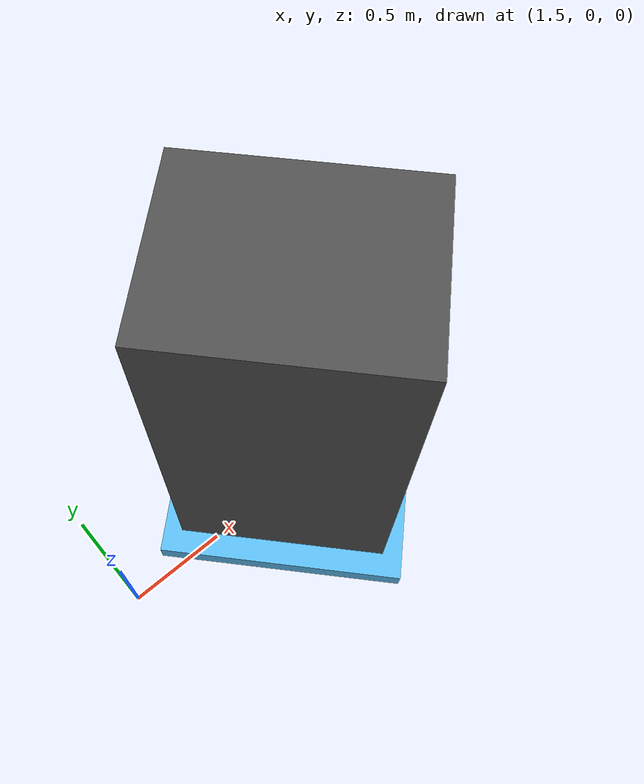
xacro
<?xml version="1.0"?>

<!-- Robot Name -->
<robot name="LiCAS_A1_sensor_wall" xmlns:xacro="http://ros.org/wiki/xacro">

  <link name="world" />

  <joint name="sensor_wall_base_joint" type="fixed">
    <origin xyz="2.5 0 0.05" rpy="0 0 0.75"/>
    <parent link="world"/>
    <child link="sensor_wall_base"/>
  </joint>

  <link name="sensor_wall_base">
    <inertial>
      <origin rpy="0 0 0" xyz="0 0 0"/>
      <mass value="1e3" />
      <inertia ixx="10" ixy="0.0" ixz="0.0" iyy="10" iyz="0.0" izz="10"/>
    </inertial>
    <visual>
      <origin xyz="0 0 0"/>
      <geometry>
	      <box size="1 1.2 0.1"/>
      </geometry>
    </visual>
    <collision>
      <origin xyz="0 0 0"/>
      <geometry>
	      <box size="1 1.2 0.1"/>
      </geometry>
    </collision>
  </link>

  <joint name="sensor_wall_joint" type="revolute">
    <origin xyz="0 0 1"/>
    <parent link="sensor_wall_base"/>
    <child link="sensor_wall"/>
    <axis xyz="0 1 0"/>
    <dynamics damping="0.0" friction="0.0"/>
    <limit effort="1000.0" lower="0" upper="0" velocity="6"/>
  </joint>

  <link name="sensor_wall">
    <inertial>
      <origin rpy="0 0 0" xyz="0 0 0"/>
      <mass value="1e3" />
      <inertia ixx="10" ixy="0.0" ixz="0.0" iyy="10" iyz="0.0" izz="10"/>
    </inertial>
    <visual>
      <origin xyz="0 0 0"/>
      <geometry>
	      <box size="0.8 1 1.8"/>
      </geometry>
    </visual>
    <collision>
      <origin xyz="0 0 0"/>
      <geometry>
	      <box size="0.8 1 1.8"/>
      </geometry>
    </collision>
  </link>

  <gazebo reference="sensor_wall">
    <material>Gazebo/DarkGrey</material>
    <mu1>0.5</mu1>
    <mu2>0.5</mu2>
    <kp value="1e2" />
    <kd value="1e2" />
  </gazebo>

  <!-- Enable the Joint Feedback -->
  <gazebo reference="sensor_wall_joint">
    <provideFeedback>true</provideFeedback>
  </gazebo>
  <!-- The ft_sensor plugin -->
  <gazebo>
    <plugin name="sensor_wall_joint_sensor" filename="libgazebo_ros_ft_sensor.so">
      <updateRate>100.0</updateRate>
      <topicName>sensor_wall_joint_sensor</topicName>
      <jointName>sensor_wall_joint</jointName>
    </plugin>
  </gazebo>

</robot>
